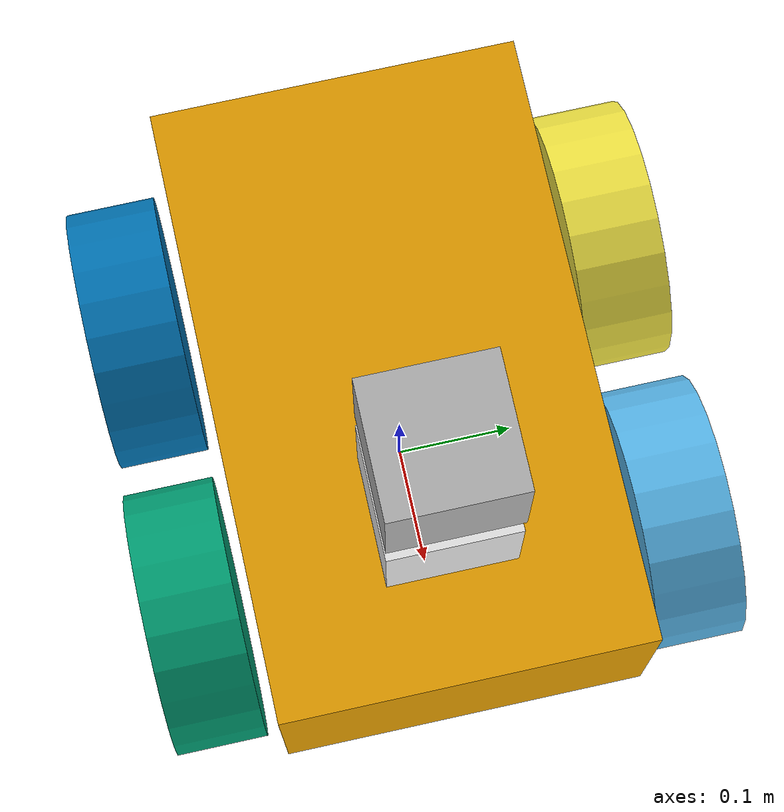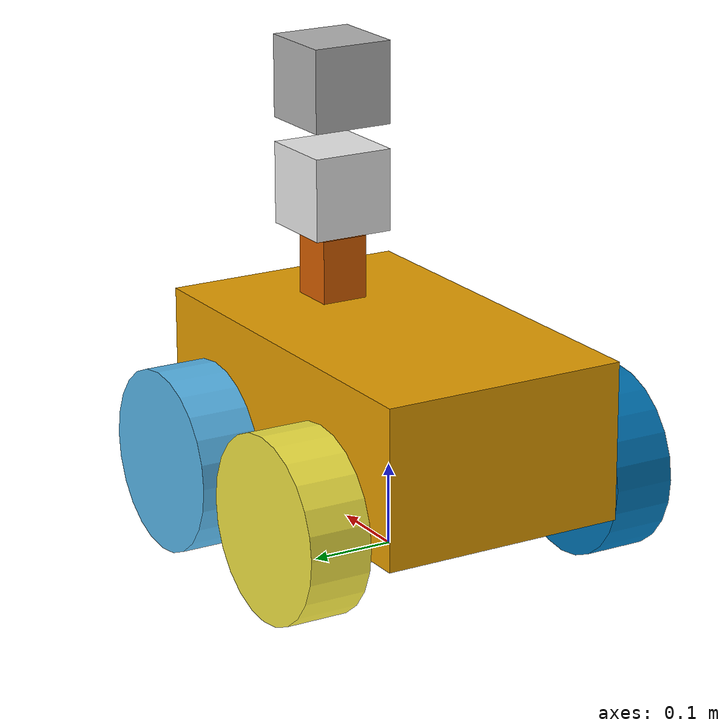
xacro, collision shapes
<?xml version="1.0"?>

<robot
  xmlns:sensor="http://playerstage.sourceforge.net/gazebo/xmlschema/#sensor"
  xmlns:controller="http://playerstage.sourceforge.net/gazebo/xmlschema/#controller"
  xmlns:interface="http://playerstage.sourceforge.net/gazebo/xmlschema/#interface"
  xmlns:xacro="http://ros.org/wiki/xacro"
  name="pioneer3at_rc2016">

  <xacro:include filename="$(find p3at_description)/urdf/pioneer3at_body.xacro"/>
  <xacro:include filename="$(find p3at_description)/urdf/hokuyo_utm30lx.urdf.xacro"/>
  <xacro:include filename="$(find p3at_description)/urdf/camera_rc2016.urdf.xacro"/>
  <xacro:include filename="$(find p3at_description)/urdf/generic_thermal_camera.urdf.xacro"/>

  <xacro:hokuyo_utm30lx name="hokuyo" parent="base_link" ros_topic="scan" update_rate="30" ray_count="181" min_angle="90" max_angle="-90">
    <origin xyz="0.13 0 0.32" rpy="0 0 0"/>
  </xacro:hokuyo_utm30lx>

  <xacro:camera_rc2016 name="camera" parent="base_link" ros_topic="camera" update_rate="30" height="0.09">
    <origin xyz="0.13 0 0.32" rpy="0 0 0"/>
  </xacro:camera_rc2016>

  <xacro:generic_thermal_camera name="thermal_camera" parent="base_link" ros_topic="thermal_image_raw" update_rate="30" height="0.09">
    <origin xyz="0.13 0 0.45" rpy="0 0 0"/>
  </xacro:generic_thermal_camera>

</robot>

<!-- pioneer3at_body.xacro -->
<robot xmlns:sensor="http://playerstage.sourceforge.net/gazebo/xmlschema/#sensor"
  xmlns:controller="http://playerstage.sourceforge.net/gazebo/xmlschema/#controller"
  xmlns:interface="http://playerstage.sourceforge.net/gazebo/xmlschema/#interface"
  xmlns:xacro="http://ros.org/wiki/xacro"
  >

  <!-- Chassis -->
  <link name="base_link">
    <inertial>
      <mass value="14.0"/>
      <origin xyz="0 0 0.04"/>
      <inertia ixx="0.14711667" ixy="0.0" ixz="0.0"
        iyy="0.334951167" iyz="0.0"
        izz="0.3978345"/>
    </inertial>
    <visual name="base_visual">
      <origin xyz="0 0 0.18" rpy="0 0 0"/>
      <geometry name="pioneer_geom">
        <mesh filename="package://p3at_urdf/p3at_description/meshes/p3at_meshes/chassis.dae"/>
      </geometry>
    </visual>
    <collision>
      <origin xyz="0 0 0.18" rpy="0 0 0"/>
      <geometry>
        <box size="0.501 0.3 0.19"/>
      </geometry>
    </collision>
  </link>

  <link name="p3at_front_left_wheel">
    <inertial>
      <mass value="1.5"/>
      <origin xyz="0 0 0"/>
      <inertia ixx="0.005240625" ixy="0" ixz="0"
        iyy="0.005240625" iyz="0" izz="0.009075"/>
    </inertial>
    <visual name="visual">
      <origin xyz="0 0 0" rpy="0 0 0"/>
      <geometry name="geom">
        <mesh filename="package://p3at_urdf/p3at_description/meshes/p3at_meshes/wheel.dae"/>
      </geometry>
    </visual>
    <collision>
      <origin xyz="0 0 0" rpy="0 0 0"/>
      <geometry>
        <cylinder radius="0.110" length="0.075"/>
      </geometry>
    </collision>
  </link>

  <joint name="p3at_front_left_wheel_joint" type="continuous">
    <axis xyz="0 0 -1"/>
    <limit effort="100" velocity="100" />
    <joint_properties damping="0.7"/>
    <origin xyz="0.125 0.2010 0.11" rpy="1.5707 0 0"/>
    <parent link="base_link"/>
    <child link="p3at_front_left_wheel"/>
  </joint>

  <link name="p3at_front_right_wheel">
    <inertial>
      <mass value="1.5"/>
      <origin xyz="0 0 0"/>
      <inertia ixx="0.005240625" ixy="0" ixz="0"
        iyy="0.005240625" iyz="0" izz="0.009075"/>
    </inertial>
    <visual name="visual">
      <origin xyz="0 0 0" rpy="0 0 0"/>
      <geometry name="geom">
        <mesh filename="package://p3at_urdf/p3at_description/meshes/p3at_meshes/wheel.dae"/>
      </geometry>
    </visual>
    <collision>
      <origin xyz="0 0 0" rpy="0 0 0"/>
      <geometry>
        <cylinder radius="0.110" length="0.075"/>
      </geometry>
    </collision>
  </link>

  <joint name="p3at_front_right_wheel_joint" type="continuous">
    <axis xyz="0 0 -1"/>
    <limit effort="100" velocity="100" />
    <joint_properties damping="0.7"/>
    <origin xyz="0.125 -0.2010 0.11" rpy="1.5707 0 0"/>
    <parent link="base_link"/>
    <child link="p3at_front_right_wheel"/>
  </joint>

  <link name="p3at_rear_left_wheel">
    <inertial>
      <mass value="1.5"/>
      <origin xyz="0 0 0"/>
      <inertia ixx="0.005240625" ixy="0" ixz="0"
        iyy="0.005240625" iyz="0" izz="0.009075"/>
    </inertial>
    <visual name="visual">
      <origin xyz="0 0 0" rpy="0 0 0"/>
      <geometry name="geom">
        <mesh filename="package://p3at_urdf/p3at_description/meshes/p3at_meshes/wheel.dae"/>
      </geometry>
    </visual>
    <collision>
      <origin xyz="0 0 0" rpy="0 0 0"/>
      <geometry>
        <cylinder radius="0.110" length="0.075"/>
      </geometry>
    </collision>
  </link>

  <joint name="p3at_rear_left_wheel_joint" type="continuous">
    <axis xyz="0 0 -1"/>
    <limit effort="100" velocity="100" />
    <joint_properties damping="0.7"/>
    <origin xyz="-0.125 0.2010 0.11" rpy="1.5707 0 0"/>
    <parent link="base_link"/>
    <child link="p3at_rear_left_wheel"/>
  </joint>

  <link name="p3at_rear_right_wheel">
    <inertial>
      <mass value="1.5"/>
      <origin xyz="0 0 0"/>
      <inertia ixx="0.005240625" ixy="0" ixz="0"
        iyy="0.005240625" iyz="0" izz="0.009075"/>
    </inertial>
    <visual name="visual">
      <origin xyz="0 0 0" rpy="0 0 0"/>
      <geometry name="geom">
        <mesh filename="package://p3at_urdf/p3at_description/meshes/p3at_meshes/wheel.dae"/>
      </geometry>
    </visual>
    <collision>
      <origin xyz="0 0 0" rpy="0 0 0"/>
      <geometry>
        <cylinder radius="0.110" length="0.075"/>
      </geometry>
    </collision>
  </link>

  <joint name="p3at_rear_right_wheel_joint" type="continuous">
    <axis xyz="0 0 -1"/>
    <limit effort="100" velocity="100" />
    <joint_properties damping="0.7"/>
    <origin xyz="-0.125 -0.2010 0.11" rpy="1.5707 0 0"/>
    <parent link="base_link"/>
    <child link="p3at_rear_right_wheel"/>
  </joint>

  <gazebo>
    <plugin name="skid_steer_drive_controller" filename="libgazebo_ros_skid_steer_drive.so">
      <updateRate>100.0</updateRate>
      <leftFrontJoint>p3at_front_left_wheel_joint</leftFrontJoint>
      <rightFrontJoint>p3at_front_right_wheel_joint</rightFrontJoint>
      <leftRearJoint>p3at_rear_left_wheel_joint</leftRearJoint>
      <rightRearJoint>p3at_rear_right_wheel_joint</rightRearJoint>
      <wheelSeparation>0.4</wheelSeparation>
      <wheelDiameter>0.215</wheelDiameter>
      <robotBaseFrame>base_link</robotBaseFrame>
      <torque>200</torque>
      <commandTopic>cmd_vel</commandTopic>
      <odometryTopic>odom</odometryTopic>
      <odometryFrame>odom</odometryFrame>
      <broadcastTF>true</broadcastTF>
    </plugin>
  </gazebo>

</robot>

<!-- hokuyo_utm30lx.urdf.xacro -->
<robot xmlns:xacro="http://ros.org/wiki/xacro">
    <xacro:property name="M_PI" value="3.1415926535897931" />

    <xacro:macro name="hokuyo_utm30lx" params="name parent *origin ros_topic update_rate ray_count min_angle max_angle">
      <joint name="${name}_joint" type="fixed">
        <xacro:insert_block name="origin" />
        <parent link="${parent}"/>
        <child link="${name}_link"/>
      </joint>

      <link name="${name}_link">
        <inertial>
          <mass value="0.270" />
          <origin xyz="0 0 0" rpy="0 0 0" />
          <inertia ixx="2.632e-4" ixy="0" ixz="0" iyy="2.632e-4" iyz="0" izz="1.62e-4" />
        </inertial>
        <visual>
          <origin xyz="0 0 0" rpy="0 0 0" />
          <geometry>
          <mesh filename="package://p3at_description/meshes/hokuyo_utm30lx/hokuyo_utm_30lx$(optenv TEST_SELF_FILTER).dae"/>
        </geometry>
        </visual>
        <collision>
          <origin xyz="0 0 -0.0115" rpy="0 0 0" />
          <geometry>
          <box size="0.058 0.058 0.087" />
        </geometry>
        </collision>
      </link>

      <gazebo reference="${name}_link">
        <sensor type="ray" name="${name}">
          <always_on>true</always_on>
          <update_rate>${update_rate}</update_rate>
          <pose>0 0 0 0 0 0</pose>
          <visualize>false</visualize>
          <ray>
            <scan>
              <horizontal>
                <samples>${ray_count}</samples>
                <resolution>1</resolution>
                <min_angle>-3*M_PI/4</min_angle>
                <max_angle>3*M_PI/4</max_angle>
              </horizontal>
            </scan>
            <range>
              <min>0.08</min>
              <max>30.0</max>
              <resolution>0.01</resolution>
            </range>
          </ray>
          <plugin name="gazebo_ros_${name}_controller" filename="libgazebo_ros_laser.so">
            <gaussianNoise>0.005</gaussianNoise>
            <alwaysOn>true</alwaysOn>
            <updateRate>${update_rate}</updateRate>
            <topicName>${ros_topic}</topicName>
            <frameName>${name}_link</frameName>
          </plugin>
        </sensor>
      </gazebo>

    </xacro:macro>
  </robot>

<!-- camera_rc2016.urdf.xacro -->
<!-- THIS XACRO CAME FROM :
       http://gazebosim.org/tutorials?tut=ros_gzplugins
-->

<robot xmlns:xacro="http://ros.org/wiki/xacro">
    <xacro:property name="M_PI" value="3.1415926535897931"/>

    <xacro:macro name="camera_rc2016" params="name parent *origin ros_topic update_rate height">

  <joint name="${name}_joint" type="fixed">
    <xacro:insert_block name="origin"/>
    <parent link="${parent}"/>
    <child link="${name}_link"/>
  </joint>

  <!-- Camera -->
  <link name="${name}_link">
    <collision>
      <origin xyz="0 0 ${height}" rpy="0 0 0"/>
      <geometry>
        <box size="0.1 0.1 0.1"/>
      </geometry>
    </collision>

    <visual>
      <origin xyz="0 0 ${height}" rpy="0 0 0"/>
      <geometry>
        <box size="0.1 0.1 0.1"/>
      </geometry>
      <material name="white"/>
    </visual>

    <inertial>
      <mass value="1e-5"/>
      <origin xyz="0 0 ${height}" rpy="0 0 0"/>
      <inertia ixx="1e-6" ixy="0" ixz="0" iyy="1e-6" iyz="0" izz="1e-6"/>
    </inertial>
  </link>

  <gazebo reference="${name}_link">
    <sensor type="camera" name="${name}">
      <update_rate>${update_rate}</update_rate>
      <camera name="head">
        <horizontal_fov>1.047</horizontal_fov>
        <image>
          <width>320</width>
          <height>240</height>
          <format>R8G8B8</format>
        </image>
        <clip>
          <near>0.1</near>
          <far>100</far>
        </clip>
          <!-- Noise is sampled independently per pixel on each frame.
               That pixel's noise value is added to each of its color
               channels, which at that point lie in the range [0,1]. -->
      </camera>
      <plugin name="camera_controller" filename="libgazebo_ros_camera.so">
        <alwaysOn>true</alwaysOn>
        <updateRate>0.0</updateRate>
        <cameraName>${name}</cameraName>
        <imageTopicName>${ros_topic}</imageTopicName>
        <cameraInfoTopicName>${name}_info</cameraInfoTopicName>
        <frameName>${name}_link</frameName>
        <hackBaseline>0.07</hackBaseline>
        <distortionK1>0.0</distortionK1>
        <distortionK2>0.0</distortionK2>
        <distortionK3>0.0</distortionK3>
        <distortionT1>0.0</distortionT1>
        <distortionT2>0.0</distortionT2>
      </plugin>
    </sensor>
  </gazebo>

    </xacro:macro>
  </robot>

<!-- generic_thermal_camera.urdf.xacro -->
<!-- THIS XACRO CAME FROM :
       http://gazebosim.org/tutorials?tut=ros_gzplugins
-->

<robot xmlns:xacro="http://ros.org/wiki/xacro">
    <xacro:property name="M_PI" value="3.1415926535897931"/>

    <xacro:macro name="generic_thermal_camera" params="name parent *origin ros_topic update_rate height">

  <joint name="${name}_joint" type="fixed">
    <xacro:insert_block name="origin"/>
    <parent link="${parent}"/>
    <child link="${name}_link"/>
  </joint>

  <!-- Camera -->
  <link name="${name}_link">
    <collision>
      <origin xyz="0 0 ${height}" rpy="0 0 0"/>
      <geometry>
        <box size="0.1 0.1 0.1"/>
      </geometry>
    </collision>

    <inertial>
      <mass value="1e-5"/>
      <origin xyz="0 0 ${height}" rpy="0 0 0"/>
      <inertia ixx="1e-6" ixy="0" ixz="0" iyy="1e-6" iyz="0" izz="1e-6"/>
    </inertial>
  </link>

  <gazebo reference="${name}_link">
    <sensor type="camera" name="${name}">
      <update_rate>${update_rate}</update_rate>
      <camera name="camera_ros_thermal">
        <horizontal_fov>1.047</horizontal_fov>
        <image>
          <width>160</width>
          <height>120</height>
          <format>R8G8B8</format>
        </image>
        <clip>
          <near>0.01</near>
          <far>100</far>
        </clip>

      </camera>
      <plugin name="thermal_camera_controller" filename="libgazebo_ros_thermal_camera_pink.so">
        <alwaysOn>true</alwaysOn>
        <updateRate>${update_rate}</updateRate>

          <imageTopicName>${name}/thermal_camera/image_raw</imageTopicName>
          <cameraInfoTopicName>${name}/thermal_camera/camera_info</cameraInfoTopicName>
          <frameName>thermal_optical_frame</frameName>
          <interface type="camera" name="thermal_camera_iface" />

      </plugin>
    </sensor>
  </gazebo>

    </xacro:macro>
  </robot>
